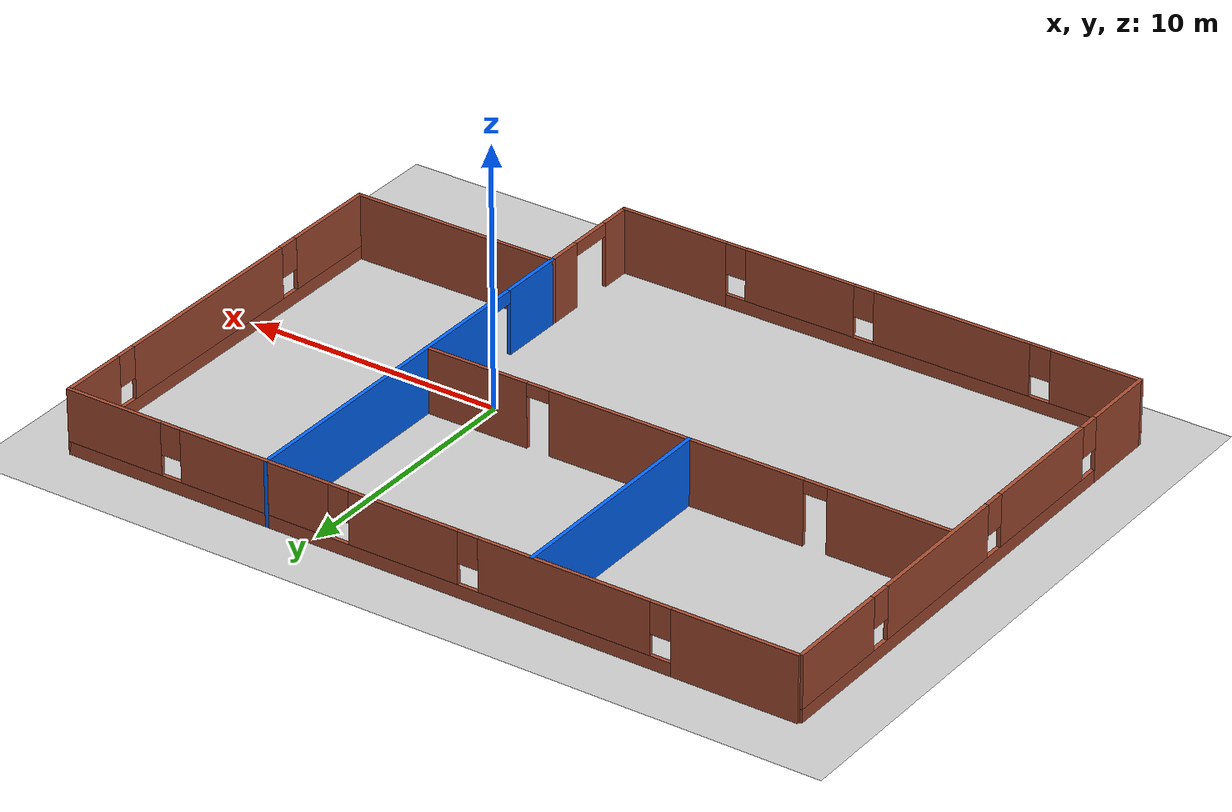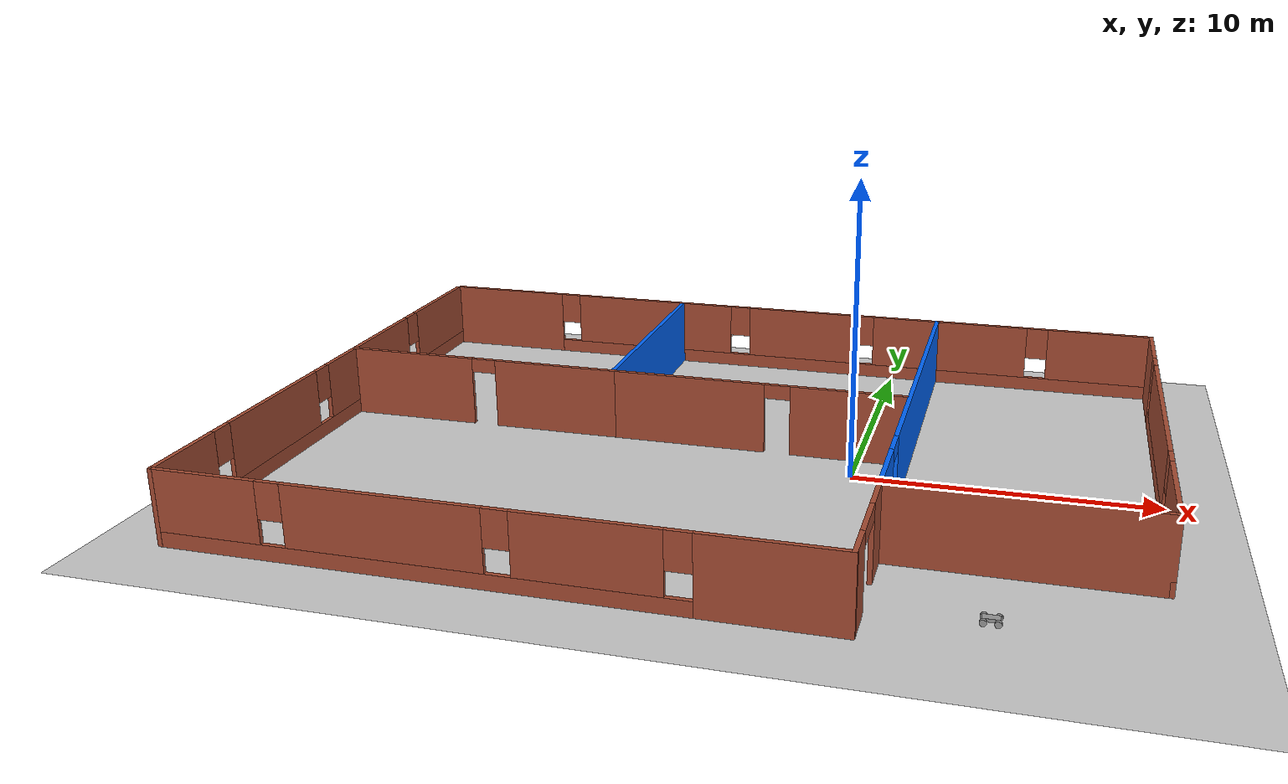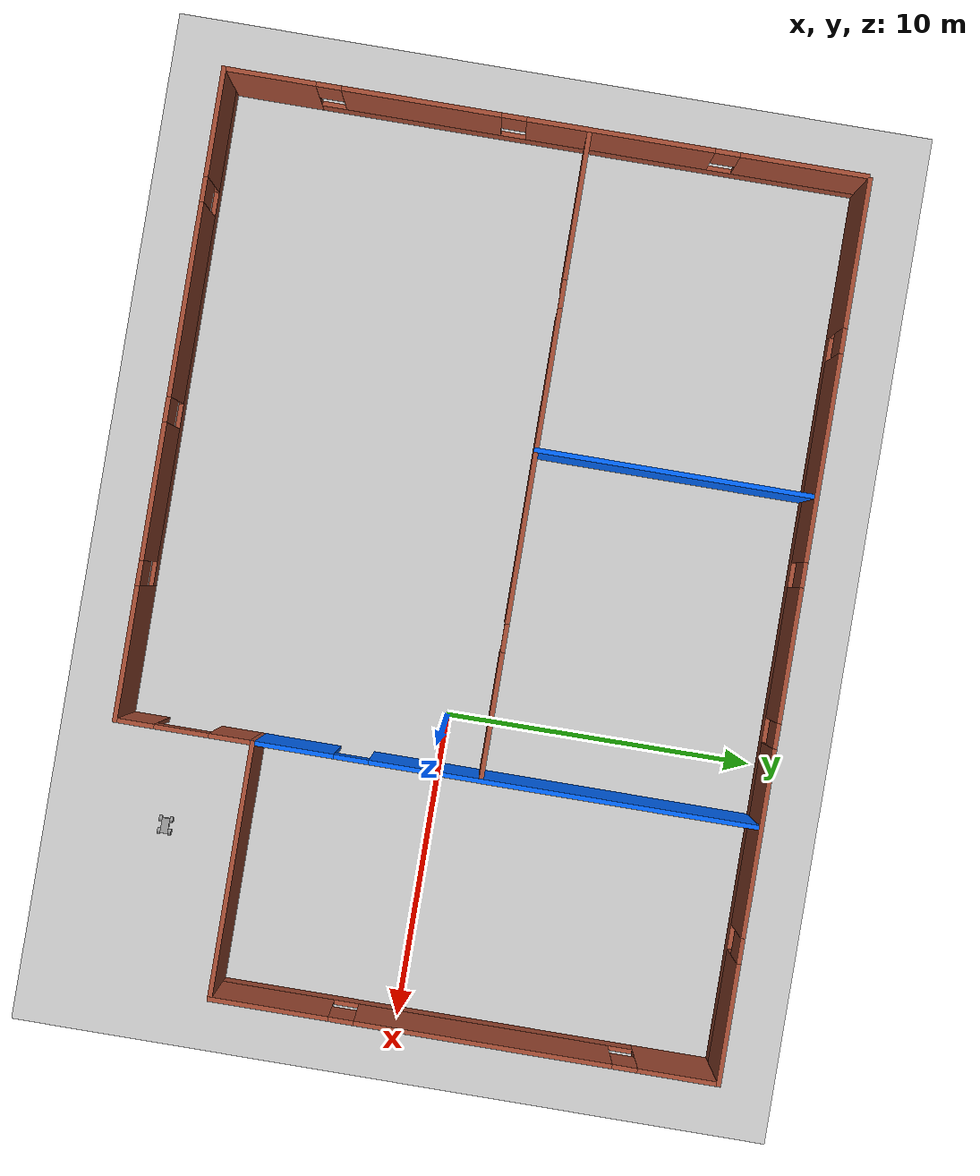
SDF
<sdf version="1.6">
 <world name="default">
  <model name="ground_plane">
   <static>1</static>
   <link name="link">
    <collision name="collision">
     <geometry><plane><normal>0 0 1</normal><size>100 100</size></plane></geometry>
     <surface>
      <contact><collide_bitmask>65535</collide_bitmask></contact>
      <friction><ode><mu>100</mu><mu2>50</mu2></ode></friction>
     </surface>
    </collision>
    <visual name="visual">
     <cast_shadows>0</cast_shadows>
     <geometry><plane><normal>0 0 1</normal><size>100 100</size></plane></geometry>
     <material>
      <script><uri>file://media/materials/scripts/gazebo.material</uri><name>Gazebo/Grey</name></script>
     </material>
    </visual>
   </link>
  </model>
  <model name="building">
   <pose>-4.55811 0.0613 0 0 -0 0</pose>
   <link name="Wall_13">
    <pose>0.05 10.225 0 0 -0 0</pose>
    <visual name="Wall_13_Visual_0">
     <pose>-11.9914 0 1.25 0 -0 0</pose>
     <geometry><box><size>4.7672 0.15 2.5</size></box></geometry>
     <material>
      <script><uri>file://media/materials/scripts/gazebo.material</uri><name>Gazebo/Bricks</name></script>
      <ambient>1 1 1 1</ambient>
     </material>
     <meta><layer>0</layer></meta>
    </visual>
    <collision name="Wall_13_Collision_0">
     <geometry><box><size>4.7672 0.15 2.5</size></box></geometry>
     <pose>-11.9914 0 1.25 0 -0 0</pose>
    </collision>
    <visual name="Wall_13_Visual_1">
     <pose>2.3836 0 0.25 0 -0 0</pose>
     <geometry><box><size>23.9828 0.15 0.5</size></box></geometry>
     <material>
      <script><uri>file://media/materials/scripts/gazebo.material</uri><name>Gazebo/Bricks</name></script>
      <ambient>1 1 1 1</ambient>
     </material>
     <meta><layer>0</layer></meta>
    </visual>
    <collision name="Wall_13_Collision_1">
     <geometry><box><size>23.9828 0.15 0.5</size></box></geometry>
     <pose>2.3836 0 0.25 0 -0 0</pose>
    </collision>
    <visual name="Wall_13_Visual_2">
     <pose>-5.50611 0 1.5 0 -0 0</pose>
     <geometry><box><size>6.60337 0.15 2</size></box></geometry>
     <material>
      <script><uri>file://media/materials/scripts/gazebo.material</uri><name>Gazebo/Bricks</name></script>
      <ambient>1 1 1 1</ambient>
     </material>
     <meta><layer>0</layer></meta>
    </visual>
    <collision name="Wall_13_Collision_2">
     <geometry><box><size>6.60337 0.15 2</size></box></geometry>
     <pose>-5.50611 0 1.5 0 -0 0</pose>
    </collision>
    <visual name="Wall_13_Visual_3">
     <pose>0.744274 0 1.5 0 -0 0</pose>
     <geometry><box><size>4.2974 0.15 2</size></box></geometry>
     <material>
      <script><uri>file://media/materials/scripts/gazebo.material</uri><name>Gazebo/Bricks</name></script>
      <ambient>1 1 1 1</ambient>
     </material>
     <meta><layer>0</layer></meta>
    </visual>
    <collision name="Wall_13_Collision_3">
     <geometry><box><size>4.2974 0.15 2</size></box></geometry>
     <pose>0.744274 0 1.5 0 -0 0</pose>
    </collision>
    <visual name="Wall_13_Visual_4">
     <pose>6.69124 0 1.5 0 -0 0</pose>
     <geometry><box><size>5.99654 0.15 2</size></box></geometry>
     <material>
      <script><uri>file://media/materials/scripts/gazebo.material</uri><name>Gazebo/Bricks</name></script>
      <ambient>1 1 1 1</ambient>
     </material>
     <meta><layer>0</layer></meta>
    </visual>
    <collision name="Wall_13_Collision_4">
     <geometry><box><size>5.99654 0.15 2</size></box></geometry>
     <pose>6.69124 0 1.5 0 -0 0</pose>
    </collision>
    <visual name="Wall_13_Visual_5">
     <pose>12.4323 0 1.5 0 -0 0</pose>
     <geometry><box><size>3.88549 0.15 2</size></box></geometry>
     <material>
      <script><uri>file://media/materials/scripts/gazebo.material</uri><name>Gazebo/Bricks</name></script>
      <ambient>1 1 1 1</ambient>
     </material>
     <meta><layer>0</layer></meta>
    </visual>
    <collision name="Wall_13_Collision_5">
     <geometry><box><size>3.88549 0.15 2</size></box></geometry>
     <pose>12.4323 0 1.5 0 -0 0</pose>
    </collision>
    <visual name="Wall_13_Visual_6">
     <pose>-9.2078 0 1.9 0 -0 0</pose>
     <geometry><box><size>0.8 0.15 1.2</size></box></geometry>
     <material>
      <script><uri>file://media/materials/scripts/gazebo.material</uri><name>Gazebo/Bricks</name></script>
      <ambient>1 1 1 1</ambient>
     </material>
     <meta><layer>0</layer></meta>
    </visual>
    <collision name="Wall_13_Collision_6">
     <geometry><box><size>0.8 0.15 1.2</size></box></geometry>
     <pose>-9.2078 0 1.9 0 -0 0</pose>
    </collision>
    <visual name="Wall_13_Visual_7">
     <pose>-1.80443 0 1.9 0 -0 0</pose>
     <geometry><box><size>0.8 0.15 1.2</size></box></geometry>
     <material>
      <script><uri>file://media/materials/scripts/gazebo.material</uri><name>Gazebo/Bricks</name></script>
      <ambient>1 1 1 1</ambient>
     </material>
     <meta><layer>0</layer></meta>
    </visual>
    <collision name="Wall_13_Collision_7">
     <geometry><box><size>0.8 0.15 1.2</size></box></geometry>
     <pose>-1.80443 0 1.9 0 -0 0</pose>
    </collision>
    <visual name="Wall_13_Visual_8">
     <pose>3.29298 0 1.9 0 -0 0</pose>
     <geometry><box><size>0.8 0.15 1.2</size></box></geometry>
     <material>
      <script><uri>file://media/materials/scripts/gazebo.material</uri><name>Gazebo/Bricks</name></script>
      <ambient>1 1 1 1</ambient>
     </material>
     <meta><layer>0</layer></meta>
    </visual>
    <collision name="Wall_13_Collision_8">
     <geometry><box><size>0.8 0.15 1.2</size></box></geometry>
     <pose>3.29298 0 1.9 0 -0 0</pose>
    </collision>
    <visual name="Wall_13_Visual_9">
     <pose>10.0895 0 1.9 0 -0 0</pose>
     <geometry><box><size>0.8 0.15 1.2</size></box></geometry>
     <material>
      <script><uri>file://media/materials/scripts/gazebo.material</uri><name>Gazebo/Bricks</name></script>
      <ambient>1 1 1 1</ambient>
     </material>
     <meta><layer>0</layer></meta>
    </visual>
    <collision name="Wall_13_Collision_9">
     <geometry><box><size>0.8 0.15 1.2</size></box></geometry>
     <pose>10.0895 0 1.9 0 -0 0</pose>
    </collision>
   </link>
   <link name="Wall_14">
    <pose>14.35 2.175 0 0 -0 -1.5708</pose>
    <visual name="Wall_14_Visual_0">
     <pose>-6.80038 0 1.25 0 -0 0</pose>
     <geometry><box><size>2.64924 0.15 2.5</size></box></geometry>
     <material>
      <script><uri>file://media/materials/scripts/gazebo.material</uri><name>Gazebo/Bricks</name></script>
      <ambient>1 1 1 1</ambient>
     </material>
     <meta><layer>0</layer></meta>
    </visual>
    <collision name="Wall_14_Collision_0">
     <geometry><box><size>2.64924 0.15 2.5</size></box></geometry>
     <pose>-6.80038 0 1.25 0 -0 0</pose>
    </collision>
    <visual name="Wall_14_Visual_1">
     <pose>1.32462 0 0.25 0 -0 0</pose>
     <geometry><box><size>13.6008 0.15 0.5</size></box></geometry>
     <material>
      <script><uri>file://media/materials/scripts/gazebo.material</uri><name>Gazebo/Bricks</name></script>
      <ambient>1 1 1 1</ambient>
     </material>
     <meta><layer>0</layer></meta>
    </visual>
    <collision name="Wall_14_Collision_1">
     <geometry><box><size>13.6008 0.15 0.5</size></box></geometry>
     <pose>1.32462 0 0.25 0 -0 0</pose>
    </collision>
    <visual name="Wall_14_Visual_2">
     <pose>-0.585188 0 1.5 0 -0 0</pose>
     <geometry><box><size>8.18114 0.15 2</size></box></geometry>
     <material>
      <script><uri>file://media/materials/scripts/gazebo.material</uri><name>Gazebo/Bricks</name></script>
      <ambient>1 1 1 1</ambient>
     </material>
     <meta><layer>0</layer></meta>
    </visual>
    <collision name="Wall_14_Collision_2">
     <geometry><box><size>8.18114 0.15 2</size></box></geometry>
     <pose>-0.585188 0 1.5 0 -0 0</pose>
    </collision>
    <visual name="Wall_14_Visual_3">
     <pose>6.21519 0 1.5 0 -0 0</pose>
     <geometry><box><size>3.81962 0.15 2</size></box></geometry>
     <material>
      <script><uri>file://media/materials/scripts/gazebo.material</uri><name>Gazebo/Bricks</name></script>
      <ambient>1 1 1 1</ambient>
     </material>
     <meta><layer>0</layer></meta>
    </visual>
    <collision name="Wall_14_Collision_3">
     <geometry><box><size>3.81962 0.15 2</size></box></geometry>
     <pose>6.21519 0 1.5 0 -0 0</pose>
    </collision>
    <visual name="Wall_14_Visual_4">
     <pose>-5.07576 0 1.9 0 -0 0</pose>
     <geometry><box><size>0.8 0.15 1.2</size></box></geometry>
     <material>
      <script><uri>file://media/materials/scripts/gazebo.material</uri><name>Gazebo/Bricks</name></script>
      <ambient>1 1 1 1</ambient>
     </material>
     <meta><layer>0</layer></meta>
    </visual>
    <collision name="Wall_14_Collision_4">
     <geometry><box><size>0.8 0.15 1.2</size></box></geometry>
     <pose>-5.07576 0 1.9 0 -0 0</pose>
    </collision>
    <visual name="Wall_14_Visual_5">
     <pose>3.90538 0 1.9 0 -0 0</pose>
     <geometry><box><size>0.8 0.15 1.2</size></box></geometry>
     <material>
      <script><uri>file://media/materials/scripts/gazebo.material</uri><name>Gazebo/Bricks</name></script>
      <ambient>1 1 1 1</ambient>
     </material>
     <meta><layer>0</layer></meta>
    </visual>
    <collision name="Wall_14_Collision_5">
     <geometry><box><size>0.8 0.15 1.2</size></box></geometry>
     <pose>3.90538 0 1.9 0 -0 0</pose>
    </collision>
   </link>
   <link name="Wall_15">
    <collision name="Wall_15_Collision">
     <geometry><box><size>8.25 0.15 2.5</size></box></geometry>
     <pose>0 0 1.25 0 -0 0</pose>
    </collision>
    <visual name="Wall_15_Visual">
     <pose>0 0 1.25 0 -0 0</pose>
     <geometry><box><size>8.25 0.15 2.5</size></box></geometry>
     <material>
      <script><uri>file://media/materials/scripts/gazebo.material</uri><name>Gazebo/Bricks</name></script>
      <ambient>1 1 1 1</ambient>
     </material>
     <meta><layer>0</layer></meta>
    </visual>
    <pose>10.3 -5.875 0 0 -0 3.14159</pose>
   </link>
   <link name="Wall_16">
    <pose>6.25 -8.05 0 0 -0 -1.5708</pose>
    <visual name="Wall_16_Visual_0">
     <pose>-1.51647 0 1.25 0 -0 0</pose>
     <geometry><box><size>1.46706 0.15 2.5</size></box></geometry>
     <material>
      <script><uri>file://media/materials/scripts/gazebo.material</uri><name>Gazebo/Bricks</name></script>
      <ambient>1 1 1 1</ambient>
     </material>
     <meta><layer>0</layer></meta>
    </visual>
    <collision name="Wall_16_Collision_0">
     <geometry><box><size>1.46706 0.15 2.5</size></box></geometry>
     <pose>-1.51647 0 1.25 0 -0 0</pose>
    </collision>
    <visual name="Wall_16_Visual_1">
     <pose>1.59657 0 1.25 0 -0 0</pose>
     <geometry><box><size>1.30685 0.15 2.5</size></box></geometry>
     <material>
      <script><uri>file://media/materials/scripts/gazebo.material</uri><name>Gazebo/Bricks</name></script>
      <ambient>1 1 1 1</ambient>
     </material>
     <meta><layer>0</layer></meta>
    </visual>
    <collision name="Wall_16_Collision_1">
     <geometry><box><size>1.30685 0.15 2.5</size></box></geometry>
     <pose>1.59657 0 1.25 0 -0 0</pose>
    </collision>
    <visual name="Wall_16_Visual_2">
     <pose>0.080105 0 2.25 0 -0 0</pose>
     <geometry><box><size>1.72609 0.15 0.5</size></box></geometry>
     <material>
      <script><uri>file://media/materials/scripts/gazebo.material</uri><name>Gazebo/Bricks</name></script>
      <ambient>1 1 1 1</ambient>
     </material>
     <meta><layer>0</layer></meta>
    </visual>
    <collision name="Wall_16_Collision_2">
     <geometry><box><size>1.72609 0.15 0.5</size></box></geometry>
     <pose>0.080105 0 2.25 0 -0 0</pose>
    </collision>
   </link>
   <link name="Wall_17">
    <pose>-4.05 -10.225 0 0 -0 3.14159</pose>
    <visual name="Wall_17_Visual_0">
     <pose>-8.21419 0 1.25 0 -0 0</pose>
     <geometry><box><size>4.32162 0.15 2.5</size></box></geometry>
     <material>
      <script><uri>file://media/materials/scripts/gazebo.material</uri><name>Gazebo/Bricks</name></script>
      <ambient>1 1 1 1</ambient>
     </material>
     <meta><layer>0</layer></meta>
    </visual>
    <collision name="Wall_17_Collision_0">
     <geometry><box><size>4.32162 0.15 2.5</size></box></geometry>
     <pose>-8.21419 0 1.25 0 -0 0</pose>
    </collision>
    <visual name="Wall_17_Visual_1">
     <pose>2.16081 0 0.25 0 -0 0</pose>
     <geometry><box><size>16.4284 0.15 0.5</size></box></geometry>
     <material>
      <script><uri>file://media/materials/scripts/gazebo.material</uri><name>Gazebo/Bricks</name></script>
      <ambient>1 1 1 1</ambient>
     </material>
     <meta><layer>0</layer></meta>
    </visual>
    <collision name="Wall_17_Collision_1">
     <geometry><box><size>16.4284 0.15 0.5</size></box></geometry>
     <pose>2.16081 0 0.25 0 -0 0</pose>
    </collision>
    <visual name="Wall_17_Visual_2">
     <pose>-3.06423 0 1.5 0 -0 0</pose>
     <geometry><box><size>4.37831 0.15 2</size></box></geometry>
     <material>
      <script><uri>file://media/materials/scripts/gazebo.material</uri><name>Gazebo/Bricks</name></script>
      <ambient>1 1 1 1</ambient>
     </material>
     <meta><layer>0</layer></meta>
    </visual>
    <collision name="Wall_17_Collision_2">
     <geometry><box><size>4.37831 0.15 2</size></box></geometry>
     <pose>-3.06423 0 1.5 0 -0 0</pose>
    </collision>
    <visual name="Wall_17_Visual_3">
     <pose>3.00411 0 1.5 0 -0 0</pose>
     <geometry><box><size>6.15836 0.15 2</size></box></geometry>
     <material>
      <script><uri>file://media/materials/scripts/gazebo.material</uri><name>Gazebo/Bricks</name></script>
      <ambient>1 1 1 1</ambient>
     </material>
     <meta><layer>0</layer></meta>
    </visual>
    <collision name="Wall_17_Collision_3">
     <geometry><box><size>6.15836 0.15 2</size></box></geometry>
     <pose>3.00411 0 1.5 0 -0 0</pose>
    </collision>
    <visual name="Wall_17_Visual_4">
     <pose>8.62914 0 1.5 0 -0 0</pose>
     <geometry><box><size>3.49171 0.15 2</size></box></geometry>
     <material>
      <script><uri>file://media/materials/scripts/gazebo.material</uri><name>Gazebo/Bricks</name></script>
      <ambient>1 1 1 1</ambient>
     </material>
     <meta><layer>0</layer></meta>
    </visual>
    <collision name="Wall_17_Collision_4">
     <geometry><box><size>3.49171 0.15 2</size></box></geometry>
     <pose>8.62914 0 1.5 0 -0 0</pose>
    </collision>
    <visual name="Wall_17_Visual_5">
     <pose>-5.65339 0 1.9 0 -0 0</pose>
     <geometry><box><size>0.8 0.15 1.2</size></box></geometry>
     <material>
      <script><uri>file://media/materials/scripts/gazebo.material</uri><name>Gazebo/Bricks</name></script>
      <ambient>1 1 1 1</ambient>
     </material>
     <meta><layer>0</layer></meta>
    </visual>
    <collision name="Wall_17_Collision_5">
     <geometry><box><size>0.8 0.15 1.2</size></box></geometry>
     <pose>-5.65339 0 1.9 0 -0 0</pose>
    </collision>
    <visual name="Wall_17_Visual_6">
     <pose>-0.475071 0 1.9 0 -0 0</pose>
     <geometry><box><size>0.8 0.15 1.2</size></box></geometry>
     <material>
      <script><uri>file://media/materials/scripts/gazebo.material</uri><name>Gazebo/Bricks</name></script>
      <ambient>1 1 1 1</ambient>
     </material>
     <meta><layer>0</layer></meta>
    </visual>
    <collision name="Wall_17_Collision_6">
     <geometry><box><size>0.8 0.15 1.2</size></box></geometry>
     <pose>-0.475071 0 1.9 0 -0 0</pose>
    </collision>
    <visual name="Wall_17_Visual_7">
     <pose>6.48329 0 1.9 0 -0 0</pose>
     <geometry><box><size>0.8 0.15 1.2</size></box></geometry>
     <material>
      <script><uri>file://media/materials/scripts/gazebo.material</uri><name>Gazebo/Bricks</name></script>
      <ambient>1 1 1 1</ambient>
     </material>
     <meta><layer>0</layer></meta>
    </visual>
    <collision name="Wall_17_Collision_7">
     <geometry><box><size>0.8 0.15 1.2</size></box></geometry>
     <pose>6.48329 0 1.9 0 -0 0</pose>
    </collision>
   </link>
   <link name="Wall_18">
    <pose>-14.35 -0.05 0 0 -0 1.5708</pose>
    <visual name="Wall_18_Visual_0">
     <pose>-8.75435 0 1.25 0 -0 0</pose>
     <geometry><box><size>2.99131 0.15 2.5</size></box></geometry>
     <material>
      <script><uri>file://media/materials/scripts/gazebo.material</uri><name>Gazebo/Bricks</name></script>
      <ambient>1 1 1 1</ambient>
     </material>
     <meta><layer>0</layer></meta>
    </visual>
    <collision name="Wall_18_Collision_0">
     <geometry><box><size>2.99131 0.15 2.5</size></box></geometry>
     <pose>-8.75435 0 1.25 0 -0 0</pose>
    </collision>
    <visual name="Wall_18_Visual_1">
     <pose>1.49565 0 0.25 0 -0 0</pose>
     <geometry><box><size>17.5087 0.15 0.5</size></box></geometry>
     <material>
      <script><uri>file://media/materials/scripts/gazebo.material</uri><name>Gazebo/Bricks</name></script>
      <ambient>1 1 1 1</ambient>
     </material>
     <meta><layer>0</layer></meta>
    </visual>
    <collision name="Wall_18_Collision_1">
     <geometry><box><size>17.5087 0.15 0.5</size></box></geometry>
     <pose>1.49565 0 0.25 0 -0 0</pose>
    </collision>
    <visual name="Wall_18_Visual_2">
     <pose>-3.92566 0 1.5 0 -0 0</pose>
     <geometry><box><size>5.06606 0.15 2</size></box></geometry>
     <material>
      <script><uri>file://media/materials/scripts/gazebo.material</uri><name>Gazebo/Bricks</name></script>
      <ambient>1 1 1 1</ambient>
     </material>
     <meta><layer>0</layer></meta>
    </visual>
    <collision name="Wall_18_Collision_2">
     <geometry><box><size>5.06606 0.15 2</size></box></geometry>
     <pose>-3.92566 0 1.5 0 -0 0</pose>
    </collision>
    <visual name="Wall_18_Visual_3">
     <pose>2.3854 0 1.5 0 -0 0</pose>
     <geometry><box><size>5.95608 0.15 2</size></box></geometry>
     <material>
      <script><uri>file://media/materials/scripts/gazebo.material</uri><name>Gazebo/Bricks</name></script>
      <ambient>1 1 1 1</ambient>
     </material>
     <meta><layer>0</layer></meta>
    </visual>
    <collision name="Wall_18_Collision_3">
     <geometry><box><size>5.95608 0.15 2</size></box></geometry>
     <pose>2.3854 0 1.5 0 -0 0</pose>
    </collision>
    <visual name="Wall_18_Visual_4">
     <pose>8.20672 0 1.5 0 -0 0</pose>
     <geometry><box><size>4.08655 0.15 2</size></box></geometry>
     <material>
      <script><uri>file://media/materials/scripts/gazebo.material</uri><name>Gazebo/Bricks</name></script>
      <ambient>1 1 1 1</ambient>
     </material>
     <meta><layer>0</layer></meta>
    </visual>
    <collision name="Wall_18_Collision_4">
     <geometry><box><size>4.08655 0.15 2</size></box></geometry>
     <pose>8.20672 0 1.5 0 -0 0</pose>
    </collision>
    <visual name="Wall_18_Visual_5">
     <pose>-6.85869 0 1.9 0 -0 0</pose>
     <geometry><box><size>0.8 0.15 1.2</size></box></geometry>
     <material>
      <script><uri>file://media/materials/scripts/gazebo.material</uri><name>Gazebo/Bricks</name></script>
      <ambient>1 1 1 1</ambient>
     </material>
     <meta><layer>0</layer></meta>
    </visual>
    <collision name="Wall_18_Collision_5">
     <geometry><box><size>0.8 0.15 1.2</size></box></geometry>
     <pose>-6.85869 0 1.9 0 -0 0</pose>
    </collision>
    <visual name="Wall_18_Visual_6">
     <pose>-0.992636 0 1.9 0 -0 0</pose>
     <geometry><box><size>0.8 0.15 1.2</size></box></geometry>
     <material>
      <script><uri>file://media/materials/scripts/gazebo.material</uri><name>Gazebo/Bricks</name></script>
      <ambient>1 1 1 1</ambient>
     </material>
     <meta><layer>0</layer></meta>
    </visual>
    <collision name="Wall_18_Collision_6">
     <geometry><box><size>0.8 0.15 1.2</size></box></geometry>
     <pose>-0.992636 0 1.9 0 -0 0</pose>
    </collision>
    <visual name="Wall_18_Visual_7">
     <pose>5.76344 0 1.9 0 -0 0</pose>
     <geometry><box><size>0.8 0.15 1.2</size></box></geometry>
     <material>
      <script><uri>file://media/materials/scripts/gazebo.material</uri><name>Gazebo/Bricks</name></script>
      <ambient>1 1 1 1</ambient>
     </material>
     <meta><layer>0</layer></meta>
    </visual>
    <collision name="Wall_18_Collision_7">
     <geometry><box><size>0.8 0.15 1.2</size></box></geometry>
     <pose>5.76344 0 1.9 0 -0 0</pose>
    </collision>
   </link>
   <link name="Wall_20">
    <pose>6.25 2.175 0 0 -0 1.5708</pose>
    <visual name="Wall_20_Visual_0">
     <pose>-6.80543 0 1.25 0 -0 0</pose>
     <geometry><box><size>2.63914 0.15 2.5</size></box></geometry>
     <material>
      <script><uri>file://media/materials/scripts/gazebo.material</uri><name>Gazebo/Grey</name></script>
      <ambient>0 0.403922 0.992157 1</ambient>
     </material>
     <meta><layer>0</layer></meta>
    </visual>
    <collision name="Wall_20_Collision_0">
     <geometry><box><size>2.63914 0.15 2.5</size></box></geometry>
     <pose>-6.80543 0 1.25 0 -0 0</pose>
    </collision>
    <visual name="Wall_20_Visual_1">
     <pose>1.86957 0 1.25 0 -0 0</pose>
     <geometry><box><size>12.5109 0.15 2.5</size></box></geometry>
     <material>
      <script><uri>file://media/materials/scripts/gazebo.material</uri><name>Gazebo/Grey</name></script>
      <ambient>0 0.403922 0.992157 1</ambient>
     </material>
     <meta><layer>0</layer></meta>
    </visual>
    <collision name="Wall_20_Collision_1">
     <geometry><box><size>12.5109 0.15 2.5</size></box></geometry>
     <pose>1.86957 0 1.25 0 -0 0</pose>
    </collision>
    <visual name="Wall_20_Visual_2">
     <pose>-4.93586 0 2.25 0 -0 0</pose>
     <geometry><box><size>1.1 0.15 0.5</size></box></geometry>
     <material>
      <script><uri>file://media/materials/scripts/gazebo.material</uri><name>Gazebo/Grey</name></script>
      <ambient>0 0.403922 0.992157 1</ambient>
     </material>
     <meta><layer>0</layer></meta>
    </visual>
    <collision name="Wall_20_Collision_2">
     <geometry><box><size>1.1 0.15 0.5</size></box></geometry>
     <pose>-4.93586 0 2.25 0 -0 0</pose>
    </collision>
   </link>
   <link name="Wall_28">
    <collision name="Wall_28_Collision">
     <geometry><box><size>9 0.15 2.5</size></box></geometry>
     <pose>0 0 1.25 0 -0 0</pose>
    </collision>
    <visual name="Wall_28_Visual">
     <pose>0 0 1.25 0 -0 0</pose>
     <geometry><box><size>9 0.15 2.5</size></box></geometry>
     <material>
      <script><uri>file://media/materials/scripts/gazebo.material</uri><name>Gazebo/Grey</name></script>
      <ambient>0 0.403922 0.992157 1</ambient>
     </material>
     <meta><layer>0</layer></meta>
    </visual>
    <pose>-4.22222 5.77902 0 0 -0 -1.5708</pose>
   </link>
   <link name="Wall_29">
    <pose>-9.27222 1.35401 0 0 -0 3.14159</pose>
    <visual name="Wall_29_Visual_0">
     <pose>-2.84471 0 1.25 0 -0 0</pose>
     <geometry><box><size>4.56058 0.15 2.5</size></box></geometry>
     <material>
      <script><uri>file://media/materials/scripts/gazebo.material</uri><name>Gazebo/Bricks</name></script>
      <ambient>0.435294 0.796078 0.67451 1</ambient>
     </material>
     <meta><layer>0</layer></meta>
    </visual>
    <collision name="Wall_29_Collision_0">
     <geometry><box><size>4.56058 0.15 2.5</size></box></geometry>
     <pose>-2.84471 0 1.25 0 -0 0</pose>
    </collision>
    <visual name="Wall_29_Visual_1">
     <pose>2.73029 0 1.25 0 -0 0</pose>
     <geometry><box><size>4.78942 0.15 2.5</size></box></geometry>
     <material>
      <script><uri>file://media/materials/scripts/gazebo.material</uri><name>Gazebo/Bricks</name></script>
      <ambient>0.435294 0.796078 0.67451 1</ambient>
     </material>
     <meta><layer>0</layer></meta>
    </visual>
    <collision name="Wall_29_Collision_1">
     <geometry><box><size>4.78942 0.15 2.5</size></box></geometry>
     <pose>2.73029 0 1.25 0 -0 0</pose>
    </collision>
    <visual name="Wall_29_Visual_2">
     <pose>-0.11442 0 2.25 0 -0 0</pose>
     <geometry><box><size>0.9 0.15 0.5</size></box></geometry>
     <material>
      <script><uri>file://media/materials/scripts/gazebo.material</uri><name>Gazebo/Bricks</name></script>
      <ambient>0.435294 0.796078 0.67451 1</ambient>
     </material>
     <meta><layer>0</layer></meta>
    </visual>
    <collision name="Wall_29_Collision_2">
     <geometry><box><size>0.9 0.15 0.5</size></box></geometry>
     <pose>-0.11442 0 2.25 0 -0 0</pose>
    </collision>
   </link>
   <link name="Wall_31">
    <pose>0.952782 1.35401 0 0 -0 0</pose>
    <visual name="Wall_31_Visual_0">
     <pose>-2.46401 0 1.25 0 -0 0</pose>
     <geometry><box><size>5.57197 0.15 2.5</size></box></geometry>
     <material>
      <script><uri>file://media/materials/scripts/gazebo.material</uri><name>Gazebo/Bricks</name></script>
      <ambient>0.435294 0.796078 0.67451 1</ambient>
     </material>
     <meta><layer>0</layer></meta>
    </visual>
    <collision name="Wall_31_Collision_0">
     <geometry><box><size>5.57197 0.15 2.5</size></box></geometry>
     <pose>-2.46401 0 1.25 0 -0 0</pose>
    </collision>
    <visual name="Wall_31_Visual_1">
     <pose>3.23598 0 1.25 0 -0 0</pose>
     <geometry><box><size>4.02803 0.15 2.5</size></box></geometry>
     <material>
      <script><uri>file://media/materials/scripts/gazebo.material</uri><name>Gazebo/Bricks</name></script>
      <ambient>0.435294 0.796078 0.67451 1</ambient>
     </material>
     <meta><layer>0</layer></meta>
    </visual>
    <collision name="Wall_31_Collision_1">
     <geometry><box><size>4.02803 0.15 2.5</size></box></geometry>
     <pose>3.23598 0 1.25 0 -0 0</pose>
    </collision>
    <visual name="Wall_31_Visual_2">
     <pose>0.77197 0 2.25 0 -0 0</pose>
     <geometry><box><size>0.9 0.15 0.5</size></box></geometry>
     <material>
      <script><uri>file://media/materials/scripts/gazebo.material</uri><name>Gazebo/Bricks</name></script>
      <ambient>0.435294 0.796078 0.67451 1</ambient>
     </material>
     <meta><layer>0</layer></meta>
    </visual>
    <collision name="Wall_31_Collision_2">
     <geometry><box><size>0.9 0.15 0.5</size></box></geometry>
     <pose>0.77197 0 2.25 0 -0 0</pose>
    </collision>
   </link>
   <static>1</static>
  </model>
  <model name="carbot">
   <link name="link_0">
    <inertial>
     <mass>1</mass>
     <inertia>
      <ixx>0.166667</ixx>
      <ixy>0</ixy>
      <ixz>0</ixz>
      <iyy>0.166667</iyy>
      <iyz>0</iyz>
      <izz>0.166667</izz>
     </inertia>
    </inertial>
    <pose>0 -0 0.2 0 -0 0</pose>
    <visual name="visual">
     <geometry><box><size>0.5 0.25 0.1</size></box></geometry>
     <material>
      <lighting>1</lighting>
      <script><uri>file://media/materials/scripts/gazebo.material</uri><name>Gazebo/Grey</name></script>
      <shader type="pixel"><normal_map>__default__</normal_map></shader>
      <ambient>0.3 0.3 0.3 1</ambient>
      <diffuse>0.7 0.7 0.7 1</diffuse>
      <specular>0.01 0.01 0.01 1</specular>
      <emissive>0 0 0 1</emissive>
     </material>
    </visual>
    <collision name="collision">
     <geometry><box><size>0.5 0.25 0.1</size></box></geometry>
     <surface>
      <friction>
       <ode><mu>1</mu><mu2>1</mu2><fdir1>0 0 0</fdir1><slip1>0</slip1><slip2>0</slip2></ode>
       <torsional>
        <coefficient>1</coefficient>
        <patch_radius>0</patch_radius>
        <surface_radius>0</surface_radius>
        <use_patch_radius>1</use_patch_radius>
        <ode><slip>0</slip></ode>
       </torsional>
      </friction>
      <bounce><restitution_coefficient>0</restitution_coefficient><threshold>1e+06</threshold></bounce>
      <contact>
       <collide_without_contact>0</collide_without_contact>
       <collide_without_contact_bitmask>1</collide_without_contact_bitmask>
       <collide_bitmask>1</collide_bitmask>
       <ode>
        <soft_cfm>0</soft_cfm>
        <soft_erp>0.2</soft_erp>
        <kp>1e+13</kp>
        <kd>1</kd>
        <max_vel>0.01</max_vel>
        <min_depth>0</min_depth>
       </ode>
       <bullet>
        <split_impulse>1</split_impulse>
        <split_impulse_penetration_threshold>-0.01</split_impulse_penetration_threshold>
        <soft_cfm>0</soft_cfm>
        <soft_erp>0.2</soft_erp>
        <kp>1e+13</kp>
        <kd>1</kd>
       </bullet>
      </contact>
     </surface>
    </collision>
   </link>
   <link name="link_2_clone">
    <inertial>
     <mass>1</mass>
     <inertia><ixx>0.145833</ixx><ixy>0</ixy><ixz>0</ixz><iyy>0.145833</iyy><iyz>0</iyz><izz>0.125</izz></inertia>
    </inertial>
    <pose>0.20023 -0.175088 0.15 1.5707 -0 0</pose>
    <visual name="visual">
     <geometry><cylinder><radius>0.1</radius><length>0.1</length></cylinder></geometry>
     <material>
      <lighting>1</lighting>
      <script><uri>file://media/materials/scripts/gazebo.material</uri><name>Gazebo/Grey</name></script>
      <shader type="pixel"><normal_map>__default__</normal_map></shader>
      <ambient>0.3 0.3 0.3 1</ambient>
      <diffuse>0.7 0.7 0.7 1</diffuse>
      <specular>0.01 0.01 0.01 1</specular>
      <emissive>0 0 0 1</emissive>
     </material>
    </visual>
    <collision name="collision">
     <geometry><cylinder><radius>0.1</radius><length>0.1</length></cylinder></geometry>
     <surface>
      <friction>
       <ode><mu>1</mu><mu2>1</mu2><fdir1>0 0 0</fdir1><slip1>0</slip1><slip2>0</slip2></ode>
       <torsional>
        <coefficient>1</coefficient>
        <patch_radius>0</patch_radius>
        <surface_radius>0</surface_radius>
        <use_patch_radius>1</use_patch_radius>
        <ode><slip>0</slip></ode>
       </torsional>
      </friction>
      <bounce><restitution_coefficient>0</restitution_coefficient><threshold>1e+06</threshold></bounce>
      <contact>
       <collide_without_contact>0</collide_without_contact>
       <collide_without_contact_bitmask>1</collide_without_contact_bitmask>
       <collide_bitmask>1</collide_bitmask>
       <ode>
        <soft_cfm>0</soft_cfm>
        <soft_erp>0.2</soft_erp>
        <kp>1e+13</kp>
        <kd>1</kd>
        <max_vel>0.01</max_vel>
        <min_depth>0</min_depth>
       </ode>
       <bullet>
        <split_impulse>1</split_impulse>
        <split_impulse_penetration_threshold>-0.01</split_impulse_penetration_threshold>
        <soft_cfm>0</soft_cfm>
        <soft_erp>0.2</soft_erp>
        <kp>1e+13</kp>
        <kd>1</kd>
       </bullet>
      </contact>
     </surface>
    </collision>
   </link>
   <link name="link_2_clone_clone">
    <inertial>
     <mass>1</mass>
     <inertia><ixx>0.145833</ixx><ixy>0</ixy><ixz>0</ixz><iyy>0.145833</iyy><iyz>0</iyz><izz>0.125</izz></inertia>
    </inertial>
    <pose>-0.2 -0.175422 0.15 1.5707 -0 0</pose>
    <visual name="visual">
     <geometry><cylinder><radius>0.1</radius><length>0.1</length></cylinder></geometry>
     <material>
      <lighting>1</lighting>
      <script><uri>file://media/materials/scripts/gazebo.material</uri><name>Gazebo/Grey</name></script>
      <shader type="pixel"><normal_map>__default__</normal_map></shader>
      <ambient>0.3 0.3 0.3 1</ambient>
      <diffuse>0.7 0.7 0.7 1</diffuse>
      <specular>0.01 0.01 0.01 1</specular>
      <emissive>0 0 0 1</emissive>
     </material>
    </visual>
    <collision name="collision">
     <geometry><cylinder><radius>0.1</radius><length>0.1</length></cylinder></geometry>
     <surface>
      <friction>
       <ode><mu>1</mu><mu2>1</mu2><fdir1>0 0 0</fdir1><slip1>0</slip1><slip2>0</slip2></ode>
       <torsional>
        <coefficient>1</coefficient>
        <patch_radius>0</patch_radius>
        <surface_radius>0</surface_radius>
        <use_patch_radius>1</use_patch_radius>
        <ode><slip>0</slip></ode>
       </torsional>
      </friction>
      <bounce><restitution_coefficient>0</restitution_coefficient><threshold>1e+06</threshold></bounce>
      <contact>
       <collide_without_contact>0</collide_without_contact>
       <collide_without_contact_bitmask>1</collide_without_contact_bitmask>
       <collide_bitmask>1</collide_bitmask>
       <ode>
        <soft_cfm>0</soft_cfm>
        <soft_erp>0.2</soft_erp>
        <kp>1e+13</kp>
        <kd>1</kd>
        <max_vel>0.01</max_vel>
        <min_depth>0</min_depth>
       </ode>
       <bullet>
        <split_impulse>1</split_impulse>
        <split_impulse_penetration_threshold>-0.01</split_impulse_penetration_threshold>
        <soft_cfm>0</soft_cfm>
        <soft_erp>0.2</soft_erp>
        <kp>1e+13</kp>
        <kd>1</kd>
       </bullet>
      </contact>
     </surface>
    </collision>
   </link>
   <link name="link_2_clone_clone_0">
    <inertial>
     <mass>1</mass>
     <inertia><ixx>0.145833</ixx><ixy>0</ixy><ixz>0</ixz><iyy>0.145833</iyy><iyz>0</iyz><izz>0.125</izz></inertia>
    </inertial>
    <pose>-0.199762 0.175089 0.15 1.5707 -0 0</pose>
    <visual name="visual">
     <geometry><cylinder><radius>0.1</radius><length>0.1</length></cylinder></geometry>
     <material>
      <lighting>1</lighting>
      <script><uri>file://media/materials/scripts/gazebo.material</uri><name>Gazebo/Grey</name></script>
      <shader type="pixel"><normal_map>__default__</normal_map></shader>
      <ambient>0.3 0.3 0.3 1</ambient>
      <diffuse>0.7 0.7 0.7 1</diffuse>
      <specular>0.01 0.01 0.01 1</specular>
      <emissive>0 0 0 1</emissive>
     </material>
    </visual>
    <collision name="collision">
     <geometry><cylinder><radius>0.1</radius><length>0.1</length></cylinder></geometry>
     <surface>
      <friction>
       <ode><mu>1</mu><mu2>1</mu2><fdir1>0 0 0</fdir1><slip1>0</slip1><slip2>0</slip2></ode>
       <torsional>
        <coefficient>1</coefficient>
        <patch_radius>0</patch_radius>
        <surface_radius>0</surface_radius>
        <use_patch_radius>1</use_patch_radius>
        <ode><slip>0</slip></ode>
       </torsional>
      </friction>
      <bounce><restitution_coefficient>0</restitution_coefficient><threshold>1e+06</threshold></bounce>
      <contact>
       <collide_without_contact>0</collide_without_contact>
       <collide_without_contact_bitmask>1</collide_without_contact_bitmask>
       <collide_bitmask>1</collide_bitmask>
       <ode>
        <soft_cfm>0</soft_cfm>
        <soft_erp>0.2</soft_erp>
        <kp>1e+13</kp>
        <kd>1</kd>
        <max_vel>0.01</max_vel>
        <min_depth>0</min_depth>
       </ode>
       <bullet>
        <split_impulse>1</split_impulse>
        <split_impulse_penetration_threshold>-0.01</split_impulse_penetration_threshold>
        <soft_cfm>0</soft_cfm>
        <soft_erp>0.2</soft_erp>
        <kp>1e+13</kp>
        <kd>1</kd>
       </bullet>
      </contact>
     </surface>
    </collision>
   </link>
   <link name="link_2_clone_clone_1">
    <inertial>
     <mass>1</mass>
     <inertia><ixx>0.145833</ixx><ixy>0</ixy><ixz>0</ixz><iyy>0.145833</iyy><iyz>0</iyz><izz>0.125</izz></inertia>
    </inertial>
    <pose>0.200238 0.175299 0.15 1.5707 -0 0</pose>
    <visual name="visual">
     <geometry><cylinder><radius>0.1</radius><length>0.1</length></cylinder></geometry>
     <material>
      <lighting>1</lighting>
      <script><uri>file://media/materials/scripts/gazebo.material</uri><name>Gazebo/Grey</name></script>
      <shader type="pixel"><normal_map>__default__</normal_map></shader>
      <ambient>0.3 0.3 0.3 1</ambient>
      <diffuse>0.7 0.7 0.7 1</diffuse>
      <specular>0.01 0.01 0.01 1</specular>
      <emissive>0 0 0 1</emissive>
     </material>
    </visual>
    <collision name="collision">
     <geometry><cylinder><radius>0.1</radius><length>0.1</length></cylinder></geometry>
     <surface>
      <friction>
       <ode><mu>1</mu><mu2>1</mu2><fdir1>0 0 0</fdir1><slip1>0</slip1><slip2>0</slip2></ode>
       <torsional>
        <coefficient>1</coefficient>
        <patch_radius>0</patch_radius>
        <surface_radius>0</surface_radius>
        <use_patch_radius>1</use_patch_radius>
        <ode><slip>0</slip></ode>
       </torsional>
      </friction>
      <bounce><restitution_coefficient>0</restitution_coefficient><threshold>1e+06</threshold></bounce>
      <contact>
       <collide_without_contact>0</collide_without_contact>
       <collide_without_contact_bitmask>1</collide_without_contact_bitmask>
       <collide_bitmask>1</collide_bitmask>
       <ode>
        <soft_cfm>0</soft_cfm>
        <soft_erp>0.2</soft_erp>
        <kp>1e+13</kp>
        <kd>1</kd>
        <max_vel>0.01</max_vel>
        <min_depth>0</min_depth>
       </ode>
       <bullet>
        <split_impulse>1</split_impulse>
        <split_impulse_penetration_threshold>-0.01</split_impulse_penetration_threshold>
        <soft_cfm>0</soft_cfm>
        <soft_erp>0.2</soft_erp>
        <kp>1e+13</kp>
        <kd>1</kd>
       </bullet>
      </contact>
     </surface>
    </collision>
   </link>
   <joint name="link_0_JOINT_0" type="revolute">
    <parent>link_0</parent>
    <child>link_2_clone_clone</child>
    <axis>
     <xyz>0 0 1</xyz>
     <use_parent_model_frame>0</use_parent_model_frame>
     <limit>
      <lower>-1.79769e+308</lower>
      <upper>1.79769e+308</upper>
      <effort>-1</effort>
      <velocity>-1</velocity>
     </limit>
     <dynamics>
      <spring_reference>0</spring_reference>
      <spring_stiffness>0</spring_stiffness>
      <damping>0</damping>
      <friction>0</friction>
     </dynamics>
    </axis>
    <physics>
     <ode><limit><cfm>0</cfm><erp>0.2</erp></limit><suspension><cfm>0</cfm><erp>0.2</erp></suspension></ode>
    </physics>
   </joint>
   <joint name="link_0_JOINT_1" type="revolute">
    <parent>link_0</parent>
    <child>link_2_clone</child>
    <axis>
     <xyz>0 0 1</xyz>
     <use_parent_model_frame>0</use_parent_model_frame>
     <limit>
      <lower>-1.79769e+308</lower>
      <upper>1.79769e+308</upper>
      <effort>-1</effort>
      <velocity>-1</velocity>
     </limit>
     <dynamics>
      <spring_reference>0</spring_reference>
      <spring_stiffness>0</spring_stiffness>
      <damping>0</damping>
     </dynamics>
    </axis>
    <physics>
     <ode><limit><cfm>0</cfm><erp>0.2</erp></limit><suspension><cfm>0</cfm><erp>0.2</erp></suspension></ode>
    </physics>
   </joint>
   <joint name="link_0_JOINT_2" type="revolute">
    <parent>link_0</parent>
    <child>link_2_clone_clone_1</child>
    <axis>
     <xyz>0 0 1</xyz>
     <use_parent_model_frame>0</use_parent_model_frame>
     <limit>
      <lower>-1.79769e+308</lower>
      <upper>1.79769e+308</upper>
      <effort>-1</effort>
      <velocity>-1</velocity>
     </limit>
     <dynamics>
      <spring_reference>0</spring_reference>
      <spring_stiffness>0</spring_stiffness>
      <damping>0</damping>
     </dynamics>
    </axis>
    <physics>
     <ode><limit><cfm>0</cfm><erp>0.2</erp></limit><suspension><cfm>0</cfm><erp>0.2</erp></suspension></ode>
    </physics>
   </joint>
   <joint name="link_0_JOINT_3" type="revolute">
    <parent>link_0</parent>
    <child>link_2_clone_clone_0</child>
    <axis>
     <xyz>0 0 1</xyz>
     <use_parent_model_frame>0</use_parent_model_frame>
     <limit>
      <lower>-1.79769e+308</lower>
      <upper>1.79769e+308</upper>
      <effort>-1</effort>
      <velocity>-1</velocity>
     </limit>
     <dynamics>
      <spring_reference>0</spring_reference>
      <spring_stiffness>0</spring_stiffness>
      <damping>0</damping>
     </dynamics>
    </axis>
    <physics>
     <ode><limit><cfm>0</cfm><erp>0.2</erp></limit><suspension><cfm>0</cfm><erp>0.2</erp></suspension></ode>
    </physics>
   </joint>
   <static>0</static>
   <pose>5.10695 -8.48885 -0.049995 0 1e-06 0.001724</pose>
  </model>
 </world>
</sdf>
